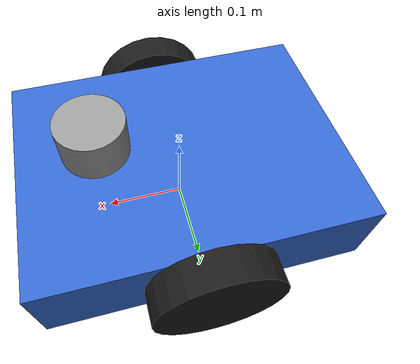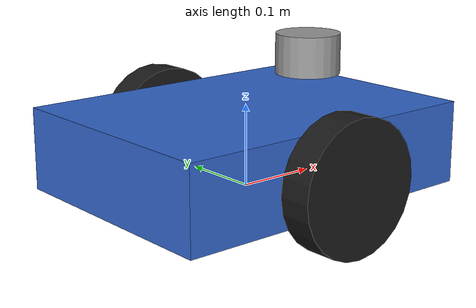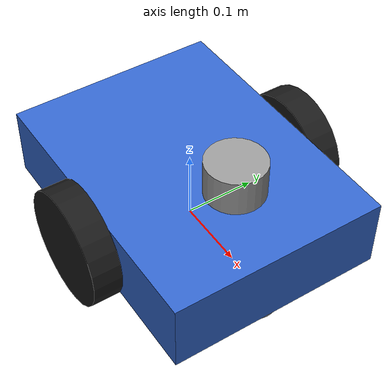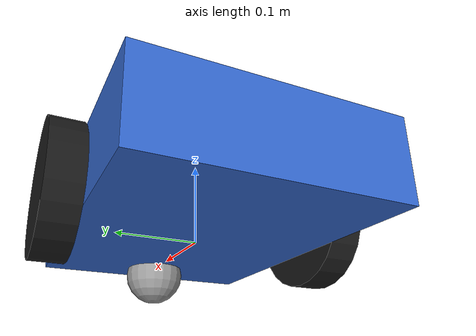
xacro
<?xml version="1.0"?>
<robot name="navigation_sim" xmlns:xacro="http://www.ros.org/wiki/xacro">

  <!-- ── Materials ── -->
  <material name="blue"><color rgba="0.2 0.4 0.8 1"/></material>
  <material name="black"><color rgba="0.1 0.1 0.1 1"/></material>
  <material name="gray"><color rgba="0.6 0.6 0.6 1"/></material>

  <xacro:property name="pi" value="3.14159265"/>

  <!-- ── Dummy base footprint (fixes KDL root link warning) ── -->
  <link name="base_footprint"/>
  <joint name="base_footprint_joint" type="fixed">
    <parent link="base_footprint"/>
    <child link="base_link"/>
    <origin xyz="0 0 0.05"/>
  </joint>

  <!-- ── Base link ── -->
  <link name="base_link">
    <visual>
      <geometry><box size="0.4 0.3 0.1"/></geometry>
      <material name="blue"/>
    </visual>
    <collision>
      <geometry><box size="0.4 0.3 0.1"/></geometry>
    </collision>
    <inertial>
      <mass value="5.0"/>
      <inertia ixx="0.05" ixy="0" ixz="0" iyy="0.06" iyz="0" izz="0.09"/>
    </inertial>
  </link>

  <!-- ── Wheel macro ── -->
  <xacro:macro name="wheel" params="name x_reflect y_reflect">
    <link name="${name}_wheel">
      <visual>
        <geometry><cylinder radius="0.08" length="0.04"/></geometry>
        <material name="black"/>
      </visual>
      <collision>
        <geometry><cylinder radius="0.08" length="0.04"/></geometry>
      </collision>
      <inertial>
        <mass value="0.5"/>
        <inertia ixx="0.001" ixy="0" ixz="0" iyy="0.001" iyz="0" izz="0.001"/>
      </inertial>
    </link>
    <joint name="${name}_wheel_joint" type="continuous">
      <parent link="base_link"/>
      <child link="${name}_wheel"/>
      <origin xyz="${x_reflect * 0.0} ${y_reflect * 0.17} -0.01"
              rpy="${pi/2} 0 0"/>
      <axis xyz="0 0 1"/>
    </joint>
  </xacro:macro>

  <xacro:wheel name="left"  x_reflect="0"  y_reflect="1"/>
  <xacro:wheel name="right" x_reflect="0"  y_reflect="-1"/>

  <!-- ── Caster (front) ── -->
  <link name="caster_link">
    <visual>
      <geometry><sphere radius="0.04"/></geometry>
      <material name="gray"/>
    </visual>
    <collision>
      <geometry><sphere radius="0.04"/></geometry>
    </collision>
    <inertial>
      <mass value="0.1"/>
      <inertia ixx="0.0001" ixy="0" ixz="0" iyy="0.0001" iyz="0" izz="0.0001"/>
    </inertial>
  </link>
  <joint name="caster_joint" type="fixed">
    <parent link="base_link"/>
    <child link="caster_link"/>
    <origin xyz="0.15 0 -0.06"/>
  </joint>

  <!-- ── LiDAR link ── -->
  <link name="lidar_link">
    <visual>
      <geometry><cylinder radius="0.04" length="0.05"/></geometry>
      <material name="gray"/>
    </visual>
    <collision>
      <geometry><cylinder radius="0.04" length="0.05"/></geometry>
    </collision>
    <inertial>
      <mass value="0.2"/>
      <inertia ixx="0.0001" ixy="0" ixz="0" iyy="0.0001" iyz="0" izz="0.0001"/>
    </inertial>
  </link>
  <joint name="lidar_joint" type="fixed">
    <parent link="base_link"/>
    <child link="lidar_link"/>
    <origin xyz="0.1 0 0.1"/>
  </joint>

  <!-- ── Gazebo plugins ── -->
  <gazebo>
    <plugin filename="gz-sim-diff-drive-system"
            name="gz::sim::systems::DiffDrive">
      <left_joint>left_wheel_joint</left_joint>
      <right_joint>right_wheel_joint</right_joint>
      <wheel_separation>0.34</wheel_separation>
      <wheel_radius>0.08</wheel_radius>
      <odom_publish_frequency>50</odom_publish_frequency>
      <topic>cmd_vel</topic>
      <odom_topic>odom</odom_topic>
      <frame_id>odom</frame_id>
      <child_frame_id>base_footprint</child_frame_id>
      <publish_odom_tf>true</publish_odom_tf>
      <max_linear_velocity>3.0</max_linear_velocity>
      <max_angular_velocity>3.0</max_angular_velocity>
      <max_linear_acceleration>2.0</max_linear_acceleration>
    </plugin>

    <plugin filename="gz-sim-joint-state-publisher-system"
            name="gz::sim::systems::JointStatePublisher">
      <joint_name>left_wheel_joint</joint_name>
      <joint_name>right_wheel_joint</joint_name>
    </plugin>
  </gazebo>

  <!-- ── 2D LiDAR sensor ── -->
  <gazebo reference="lidar_link">
    <sensor name="lidar" type="gpu_lidar">
      <topic>scan</topic>
      <frame_id>lidar_link</frame_id>
      <update_rate>10</update_rate>
      <lidar>
        <scan>
          <horizontal>
            <samples>360</samples>
            <resolution>1</resolution>
            <min_angle>-3.14159</min_angle>
            <max_angle>3.14159</max_angle>
          </horizontal>
        </scan>
        <range>
          <min>0.12</min>
          <max>10.0</max>
          <resolution>0.01</resolution>
        </range>
        <noise>
          <type>gaussian</type>
          <mean>0.0</mean>
          <stddev>0.01</stddev>
        </noise>
      </lidar>
      <always_on>true</always_on>
      <visualize>true</visualize>
    </sensor>
  </gazebo>

</robot>
